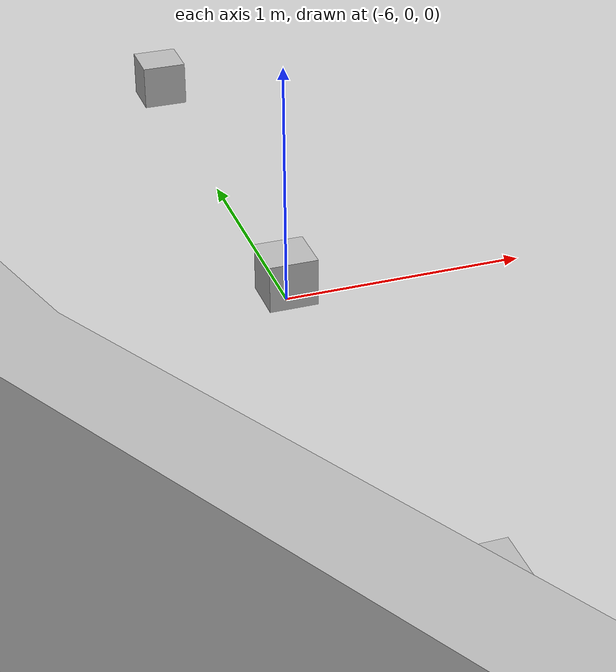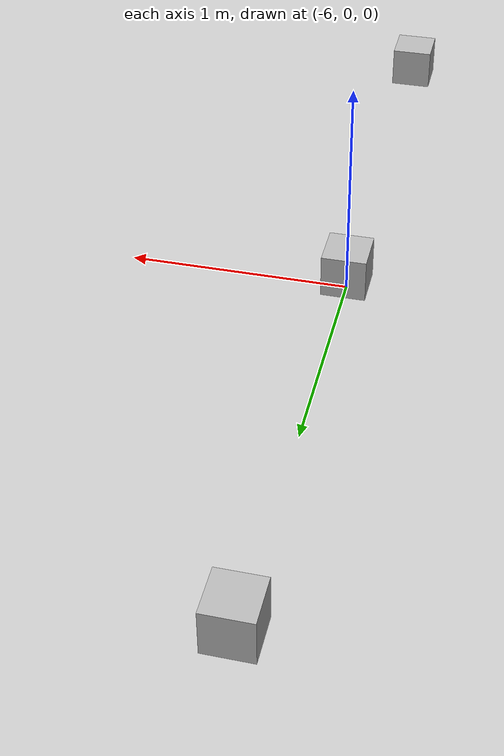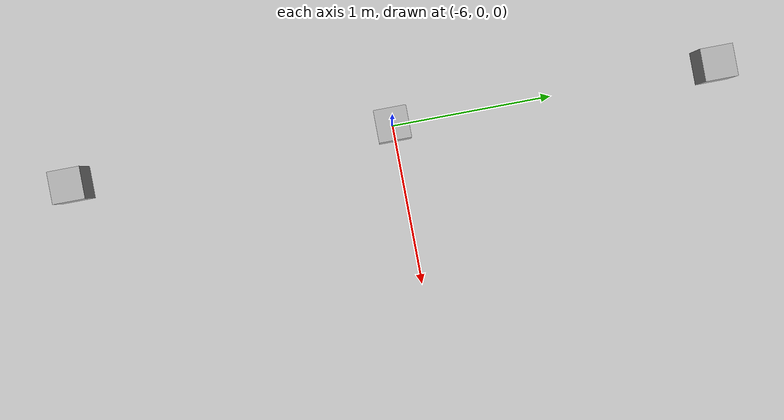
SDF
<?xml version="1.0"?>
<sdf version="1.6">
    <world name="default">
        <include>
            <uri>model://sun</uri>
        </include>
        <include>
            <uri>model://library_groundplane</uri>
        </include>
        <include>
            <uri>model://mz_library</uri>
        </include>

        <include>
            <uri>model://mark_label</uri>
            <pose>-6 -2 0 0 0 0</pose>
            <scale>1 1 1</scale>
        </include>

        <include>
            <uri>model://mark_label</uri>
            <pose>-6 0 0 0 0 0</pose>
            <scale>1 1 1</scale>
        </include>

        <include>
            <uri>model://mark_label</uri>
            <pose>-6 2 0 0 0 0</pose>
            <scale>1 1 1</scale>
        </include>

    </world>
</sdf>

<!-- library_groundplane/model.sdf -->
<sdf version="1.6">
  <model name="library_groundplane">
    <static>true</static>
    <link name="link">
      <collision name="library_groundplane_collision">
        <geometry>
          <plane>
            <normal>0 0 1</normal>
            <size>30 30</size>
          </plane>
        </geometry>
        <surface>
          <friction>
            <ode>
              <mu>100</mu>
              <mu2>50</mu2>
            </ode>
          </friction>
        </surface>
      </collision>
      <visual name="library_groundplane_visual">
        <cast_shadows>false</cast_shadows>
        <geometry>
          <plane>
            <normal>0 0 1</normal>
            <size>30 30</size>
          </plane>
        </geometry>
        <material>
          <script>
            <uri>model://library_groundplane/materials/scripts</uri>
            <uri>model://library_groundplane/materials/textures</uri>
            <name>library_groundplane/Image </name>
          </script>
        </material>
      </visual>
    </link>
  </model>
</sdf>

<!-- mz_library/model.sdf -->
<sdf version='1.6'>
    <model name="mz_library">
        <pose>0 0 0 0 0 0</pose>
        <static>true</static>
        <link name="libro_scene">
            <inertial>
                <mass>15</mass>
                <inertia>
                    <ixx>0.0</ixx>
                    <ixy>0.0</ixy>
                    <ixz>0.0</ixz>
                    <iyy>0.0</iyy>
                    <iyz>0.0</iyz>
                    <izz>0.0</izz>
                </inertia>
            </inertial>
            <collision name="collision">
                <pose>0 0 0 0 0 0</pose>
                <geometry>
                    <mesh>
                        <uri>model://mz_library/meshes/library.dae</uri>
                    </mesh>
                </geometry>
            </collision>
            <visual name="visual">
                <pose>0 0 0 0 0 0</pose>
                <geometry>
                    <mesh>
                        <uri>model://mz_library/meshes/library.dae</uri>
                    </mesh>
                </geometry>
            </visual>
        </link>
    </model>
</sdf>

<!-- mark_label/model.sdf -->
<sdf version='1.4'>
  <model name="mark_label">
    <link name='link'>
      <pose>0 0 0.115 0 0 0</pose>
      <inertial>
        <mass>0.390</mass>
        <inertia>
          <ixx>0.00058</ixx>
          <ixy>0</ixy>
          <ixz>0</ixz>
          <iyy>0.00058</iyy>
          <iyz>0</iyz>
          <izz>0.00019</izz>
        </inertia>
      </inertial>
      <collision name='collision'>
        <geometry>
                <box>
                  <size>.2 .2 .2</size>
                </box>
        </geometry>
      </collision>

      <visual name='visual'>
        <geometry>
                <box>
                  <size>.2 .2 .2</size>
                </box>
        </geometry>

        <material>
          <script>
            <uri>model://mark_label/materials/scripts</uri>
            <uri>model://mark_label/materials/textures</uri>
            <name>Mark/Diffuse</name>
          </script>
        </material>
      </visual>
    </link>
  </model>
</sdf>
